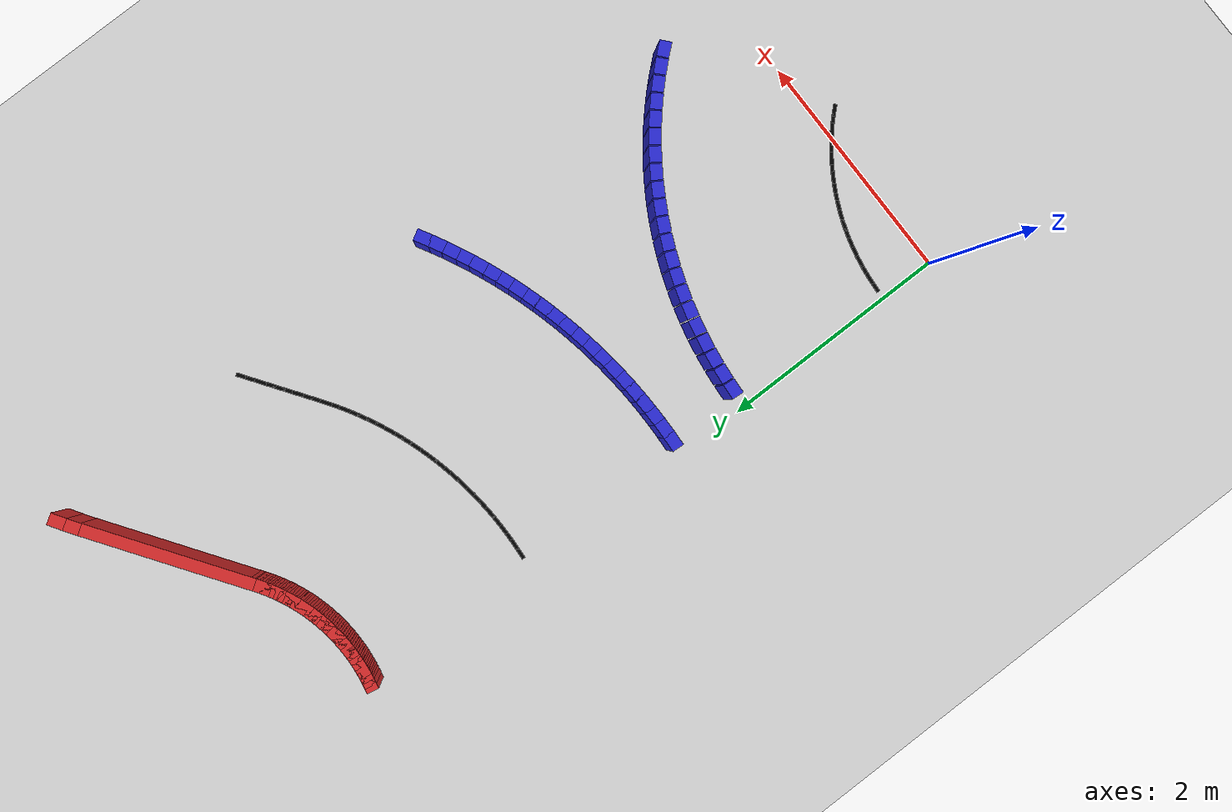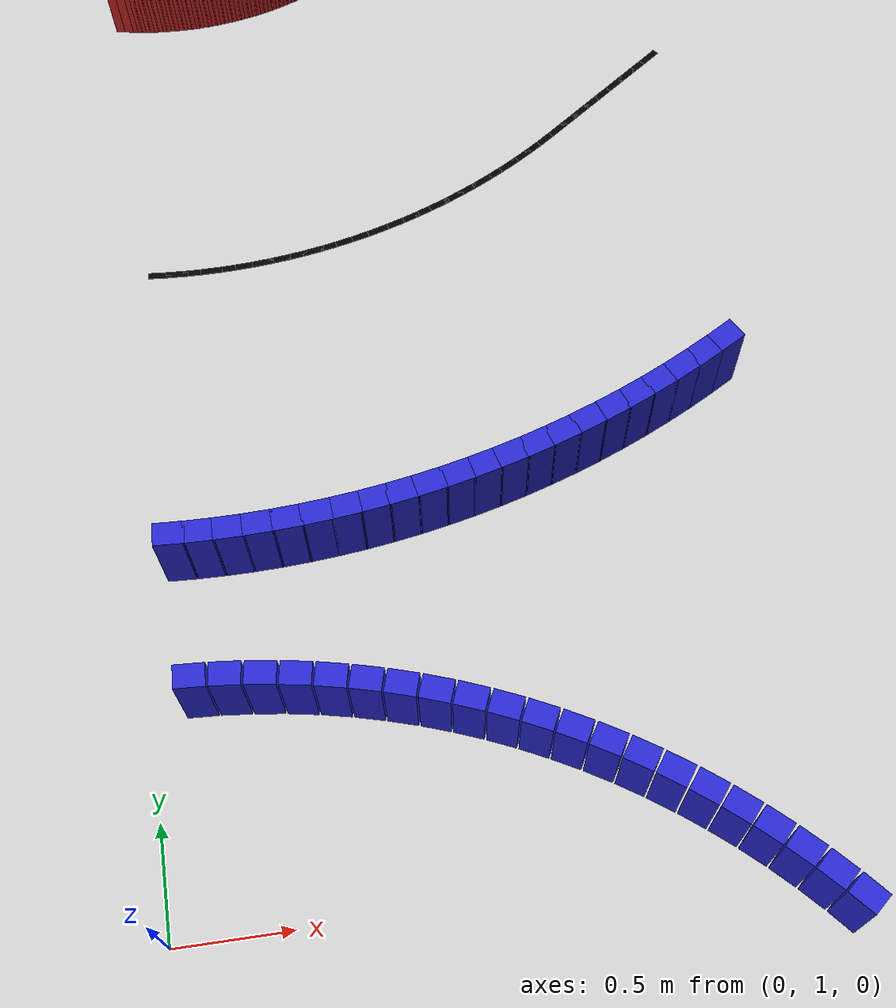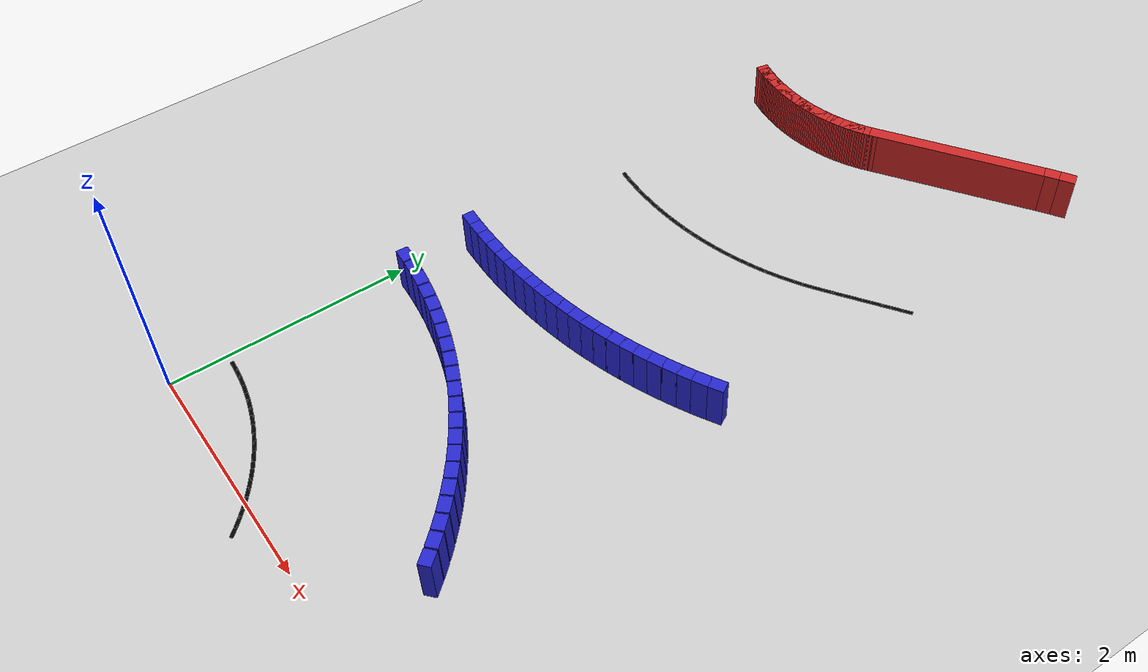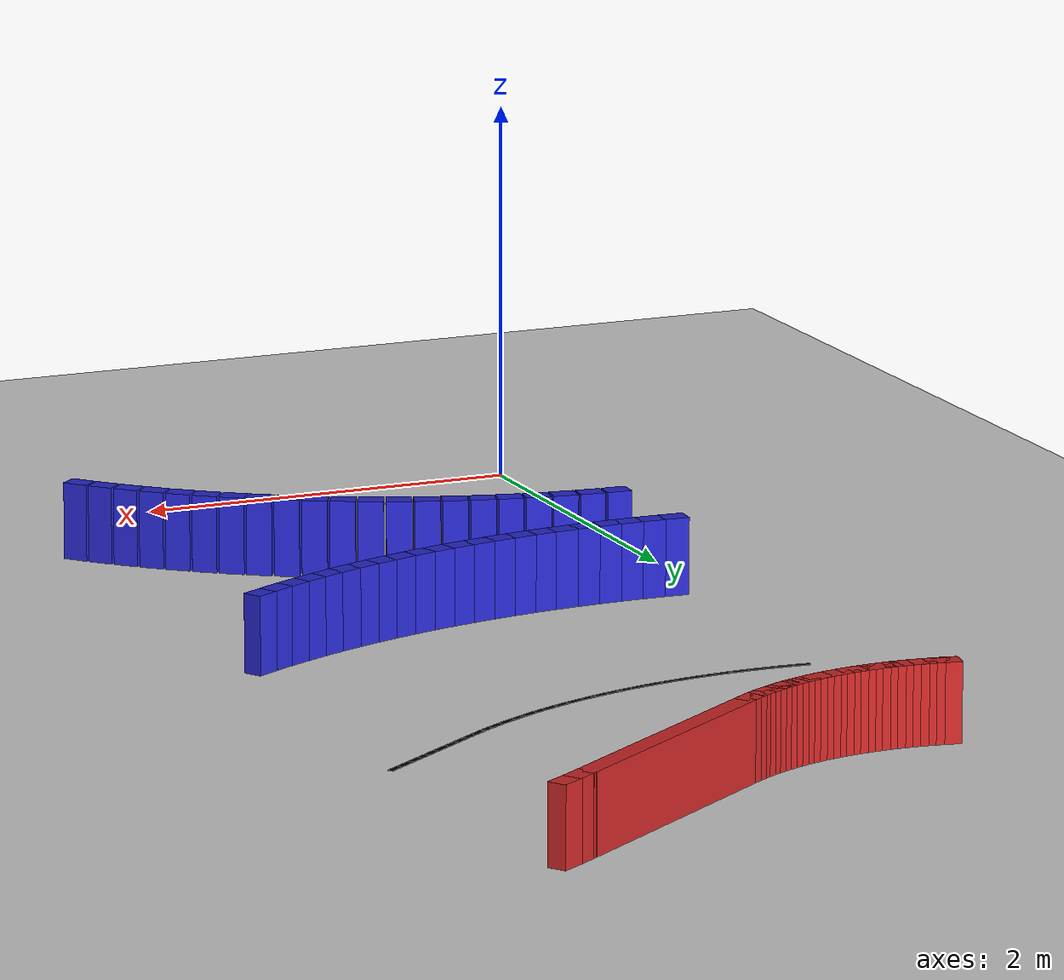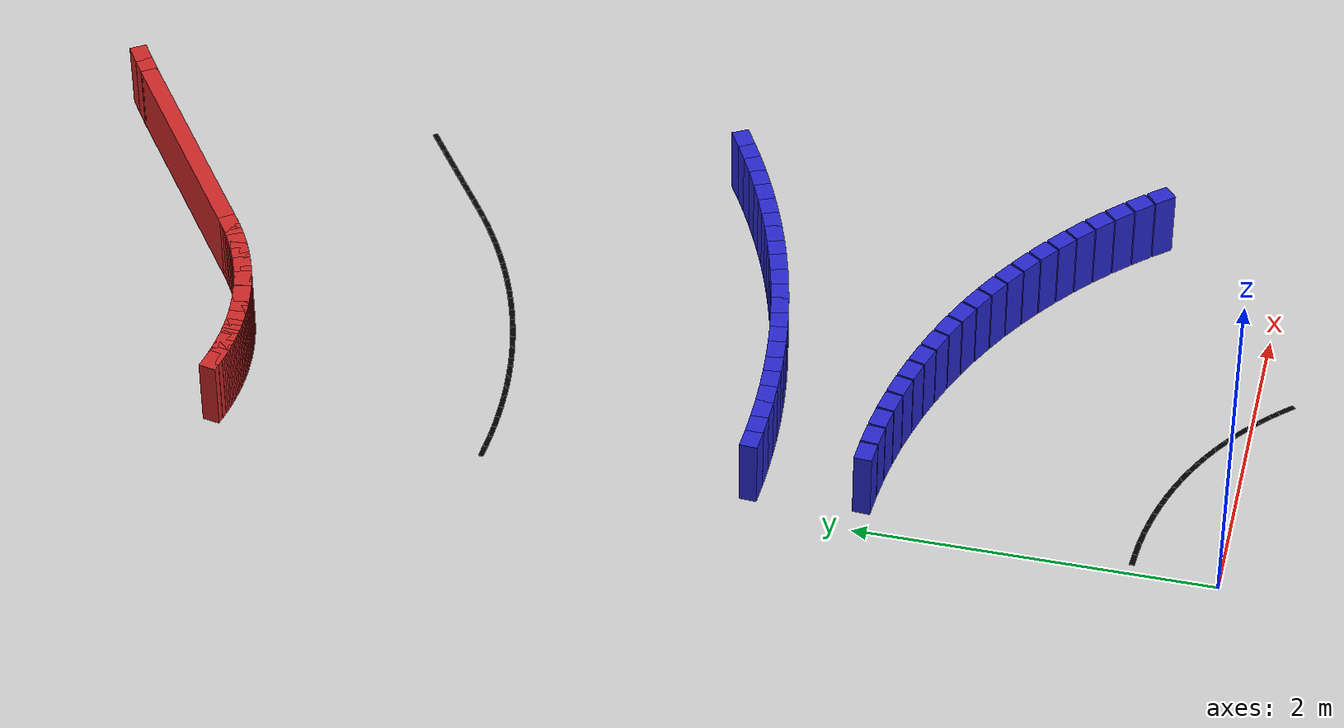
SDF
<sdf version="1.6">
 <world name="new_race_track">
  <include><uri>model://ground_plane</uri></include>
  <include><uri>model://sun</uri></include>
  <model name="race_track">
   <static>true</static>
   <link name="wall_link_121">
    <collision name="c"><geometry><box><size>0.1305 0.1 0.4</size></box></geometry></collision>
    <visual name="v">
     <geometry><box><size>0.1305 0.1 0.4</size></box></geometry>
     <material><ambient>0.15 0.15 0.8 1</ambient><diffuse>0.15 0.15 0.8 1</diffuse></material>
    </visual>
    <pose>0.2113 1.9732 0.200 0 0 -0.0604</pose>
   </link>
   <link name="wall_link_122">
    <collision name="c"><geometry><box><size>0.1305 0.1 0.4</size></box></geometry></collision>
    <visual name="v">
     <geometry><box><size>0.1305 0.1 0.4</size></box></geometry>
     <material><ambient>0.15 0.15 0.8 1</ambient><diffuse>0.15 0.15 0.8 1</diffuse></material>
    </visual>
    <pose>0.3518 1.9619 0.200 0 0 -0.1007</pose>
   </link>
   <link name="wall_link_123">
    <collision name="c"><geometry><box><size>0.1305 0.1 0.4</size></box></geometry></collision>
    <visual name="v">
     <geometry><box><size>0.1305 0.1 0.4</size></box></geometry>
     <material><ambient>0.15 0.15 0.8 1</ambient><diffuse>0.15 0.15 0.8 1</diffuse></material>
    </visual>
    <pose>0.4917 1.9449 0.200 0 0 -0.1410</pose>
   </link>
   <link name="wall_link_124">
    <collision name="c"><geometry><box><size>0.1305 0.1 0.4</size></box></geometry></collision>
    <visual name="v">
     <geometry><box><size>0.1305 0.1 0.4</size></box></geometry>
     <material><ambient>0.15 0.15 0.8 1</ambient><diffuse>0.15 0.15 0.8 1</diffuse></material>
    </visual>
    <pose>0.6308 1.9223 0.200 0 0 -0.1812</pose>
   </link>
   <link name="wall_link_125">
    <collision name="c"><geometry><box><size>0.1305 0.1 0.4</size></box></geometry></collision>
    <visual name="v">
     <geometry><box><size>0.1305 0.1 0.4</size></box></geometry>
     <material><ambient>0.15 0.15 0.8 1</ambient><diffuse>0.15 0.15 0.8 1</diffuse></material>
    </visual>
    <pose>0.7689 1.8941 0.200 0 0 -0.2215</pose>
   </link>
   <link name="wall_link_126">
    <collision name="c"><geometry><box><size>0.1305 0.1 0.4</size></box></geometry></collision>
    <visual name="v">
     <geometry><box><size>0.1305 0.1 0.4</size></box></geometry>
     <material><ambient>0.15 0.15 0.8 1</ambient><diffuse>0.15 0.15 0.8 1</diffuse></material>
    </visual>
    <pose>0.9058 1.8603 0.200 0 0 -0.2618</pose>
   </link>
   <link name="wall_link_127">
    <collision name="c"><geometry><box><size>0.1305 0.1 0.4</size></box></geometry></collision>
    <visual name="v">
     <geometry><box><size>0.1305 0.1 0.4</size></box></geometry>
     <material><ambient>0.15 0.15 0.8 1</ambient><diffuse>0.15 0.15 0.8 1</diffuse></material>
    </visual>
    <pose>1.0411 1.8211 0.200 0 0 -0.3021</pose>
   </link>
   <link name="wall_link_128">
    <collision name="c"><geometry><box><size>0.1305 0.1 0.4</size></box></geometry></collision>
    <visual name="v">
     <geometry><box><size>0.1305 0.1 0.4</size></box></geometry>
     <material><ambient>0.15 0.15 0.8 1</ambient><diffuse>0.15 0.15 0.8 1</diffuse></material>
    </visual>
    <pose>1.1748 1.7765 0.200 0 0 -0.3424</pose>
   </link>
   <link name="wall_link_129">
    <collision name="c"><geometry><box><size>0.1305 0.1 0.4</size></box></geometry></collision>
    <visual name="v">
     <geometry><box><size>0.1305 0.1 0.4</size></box></geometry>
     <material><ambient>0.15 0.15 0.8 1</ambient><diffuse>0.15 0.15 0.8 1</diffuse></material>
    </visual>
    <pose>1.3066 1.7265 0.200 0 0 -0.3826</pose>
   </link>
   <link name="wall_link_130">
    <collision name="c"><geometry><box><size>0.1305 0.1 0.4</size></box></geometry></collision>
    <visual name="v">
     <geometry><box><size>0.1305 0.1 0.4</size></box></geometry>
     <material><ambient>0.15 0.15 0.8 1</ambient><diffuse>0.15 0.15 0.8 1</diffuse></material>
    </visual>
    <pose>1.4363 1.6713 0.200 0 0 -0.4229</pose>
   </link>
   <link name="wall_link_131">
    <collision name="c"><geometry><box><size>0.1305 0.1 0.4</size></box></geometry></collision>
    <visual name="v">
     <geometry><box><size>0.1305 0.1 0.4</size></box></geometry>
     <material><ambient>0.15 0.15 0.8 1</ambient><diffuse>0.15 0.15 0.8 1</diffuse></material>
    </visual>
    <pose>1.5636 1.6109 0.200 0 0 -0.4632</pose>
   </link>
   <link name="wall_link_132">
    <collision name="c"><geometry><box><size>0.1305 0.1 0.4</size></box></geometry></collision>
    <visual name="v">
     <geometry><box><size>0.1305 0.1 0.4</size></box></geometry>
     <material><ambient>0.15 0.15 0.8 1</ambient><diffuse>0.15 0.15 0.8 1</diffuse></material>
    </visual>
    <pose>1.6884 1.5454 0.200 0 0 -0.5035</pose>
   </link>
   <link name="wall_link_133">
    <collision name="c"><geometry><box><size>0.1305 0.1 0.4</size></box></geometry></collision>
    <visual name="v">
     <geometry><box><size>0.1305 0.1 0.4</size></box></geometry>
     <material><ambient>0.15 0.15 0.8 1</ambient><diffuse>0.15 0.15 0.8 1</diffuse></material>
    </visual>
    <pose>1.8105 1.4749 0.200 0 0 -0.5437</pose>
   </link>
   <link name="wall_link_134">
    <collision name="c"><geometry><box><size>0.1305 0.1 0.4</size></box></geometry></collision>
    <visual name="v">
     <geometry><box><size>0.1305 0.1 0.4</size></box></geometry>
     <material><ambient>0.15 0.15 0.8 1</ambient><diffuse>0.15 0.15 0.8 1</diffuse></material>
    </visual>
    <pose>1.9296 1.3996 0.200 0 0 -0.5840</pose>
   </link>
   <link name="wall_link_135">
    <collision name="c"><geometry><box><size>0.1305 0.1 0.4</size></box></geometry></collision>
    <visual name="v">
     <geometry><box><size>0.1305 0.1 0.4</size></box></geometry>
     <material><ambient>0.15 0.15 0.8 1</ambient><diffuse>0.15 0.15 0.8 1</diffuse></material>
    </visual>
    <pose>2.0456 1.3195 0.200 0 0 -0.6243</pose>
   </link>
   <link name="wall_link_136">
    <collision name="c"><geometry><box><size>0.1305 0.1 0.4</size></box></geometry></collision>
    <visual name="v">
     <geometry><box><size>0.1305 0.1 0.4</size></box></geometry>
     <material><ambient>0.15 0.15 0.8 1</ambient><diffuse>0.15 0.15 0.8 1</diffuse></material>
    </visual>
    <pose>2.1583 1.2348 0.200 0 0 -0.6646</pose>
   </link>
   <link name="wall_link_137">
    <collision name="c"><geometry><box><size>0.1305 0.1 0.4</size></box></geometry></collision>
    <visual name="v">
     <geometry><box><size>0.1305 0.1 0.4</size></box></geometry>
     <material><ambient>0.15 0.15 0.8 1</ambient><diffuse>0.15 0.15 0.8 1</diffuse></material>
    </visual>
    <pose>2.2674 1.1457 0.200 0 0 -0.7048</pose>
   </link>
   <link name="wall_link_138">
    <collision name="c"><geometry><box><size>0.1305 0.1 0.4</size></box></geometry></collision>
    <visual name="v">
     <geometry><box><size>0.1305 0.1 0.4</size></box></geometry>
     <material><ambient>0.15 0.15 0.8 1</ambient><diffuse>0.15 0.15 0.8 1</diffuse></material>
    </visual>
    <pose>2.3729 1.0522 0.200 0 0 -0.7451</pose>
   </link>
   <link name="wall_link_139">
    <collision name="c"><geometry><box><size>0.1305 0.1 0.4</size></box></geometry></collision>
    <visual name="v">
     <geometry><box><size>0.1305 0.1 0.4</size></box></geometry>
     <material><ambient>0.15 0.15 0.8 1</ambient><diffuse>0.15 0.15 0.8 1</diffuse></material>
    </visual>
    <pose>2.4746 0.9546 0.200 0 0 -0.7854</pose>
   </link>
   <link name="wall_link_140">
    <collision name="c"><geometry><box><size>0.1305 0.1 0.4</size></box></geometry></collision>
    <visual name="v">
     <geometry><box><size>0.1305 0.1 0.4</size></box></geometry>
     <material><ambient>0.15 0.15 0.8 1</ambient><diffuse>0.15 0.15 0.8 1</diffuse></material>
    </visual>
    <pose>2.5722 0.8529 0.200 0 0 -0.8257</pose>
   </link>
   <link name="wall_link_141">
    <collision name="c"><geometry><box><size>0.1305 0.1 0.4</size></box></geometry></collision>
    <visual name="v">
     <geometry><box><size>0.1305 0.1 0.4</size></box></geometry>
     <material><ambient>0.15 0.15 0.8 1</ambient><diffuse>0.15 0.15 0.8 1</diffuse></material>
    </visual>
    <pose>2.6657 0.7474 0.200 0 0 -0.8660</pose>
   </link>
   <link name="wall_link_306">
    <collision name="c"><geometry><box><size>0.1314 0.1 0.4</size></box></geometry></collision>
    <visual name="v">
     <geometry><box><size>0.1314 0.1 0.4</size></box></geometry>
     <material><ambient>0.15 0.15 0.8 1</ambient><diffuse>0.15 0.15 0.8 1</diffuse></material>
    </visual>
    <pose>2.6385 3.1748 0.200 0 0 -2.6258</pose>
   </link>
   <link name="wall_link_307">
    <collision name="c"><geometry><box><size>0.1314 0.1 0.4</size></box></geometry></collision>
    <visual name="v">
     <geometry><box><size>0.1314 0.1 0.4</size></box></geometry>
     <material><ambient>0.15 0.15 0.8 1</ambient><diffuse>0.15 0.15 0.8 1</diffuse></material>
    </visual>
    <pose>2.5315 3.1159 0.200 0 0 -2.6529</pose>
   </link>
   <link name="wall_link_308">
    <collision name="c"><geometry><box><size>0.1314 0.1 0.4</size></box></geometry></collision>
    <visual name="v">
     <geometry><box><size>0.1314 0.1 0.4</size></box></geometry>
     <material><ambient>0.15 0.15 0.8 1</ambient><diffuse>0.15 0.15 0.8 1</diffuse></material>
    </visual>
    <pose>2.4228 3.0601 0.200 0 0 -2.6801</pose>
   </link>
   <link name="wall_link_309">
    <collision name="c"><geometry><box><size>0.1314 0.1 0.4</size></box></geometry></collision>
    <visual name="v">
     <geometry><box><size>0.1314 0.1 0.4</size></box></geometry>
     <material><ambient>0.15 0.15 0.8 1</ambient><diffuse>0.15 0.15 0.8 1</diffuse></material>
    </visual>
    <pose>2.3127 3.0071 0.200 0 0 -2.7072</pose>
   </link>
   <link name="wall_link_310">
    <collision name="c"><geometry><box><size>0.1314 0.1 0.4</size></box></geometry></collision>
    <visual name="v">
     <geometry><box><size>0.1314 0.1 0.4</size></box></geometry>
     <material><ambient>0.15 0.15 0.8 1</ambient><diffuse>0.15 0.15 0.8 1</diffuse></material>
    </visual>
    <pose>2.2012 2.9572 0.200 0 0 -2.7343</pose>
   </link>
   <link name="wall_link_311">
    <collision name="c"><geometry><box><size>0.1314 0.1 0.4</size></box></geometry></collision>
    <visual name="v">
     <geometry><box><size>0.1314 0.1 0.4</size></box></geometry>
     <material><ambient>0.15 0.15 0.8 1</ambient><diffuse>0.15 0.15 0.8 1</diffuse></material>
    </visual>
    <pose>2.0884 2.9104 0.200 0 0 -2.7615</pose>
   </link>
   <link name="wall_link_312">
    <collision name="c"><geometry><box><size>0.1314 0.1 0.4</size></box></geometry></collision>
    <visual name="v">
     <geometry><box><size>0.1314 0.1 0.4</size></box></geometry>
     <material><ambient>0.15 0.15 0.8 1</ambient><diffuse>0.15 0.15 0.8 1</diffuse></material>
    </visual>
    <pose>1.9743 2.8666 0.200 0 0 -2.7886</pose>
   </link>
   <link name="wall_link_313">
    <collision name="c"><geometry><box><size>0.1314 0.1 0.4</size></box></geometry></collision>
    <visual name="v">
     <geometry><box><size>0.1314 0.1 0.4</size></box></geometry>
     <material><ambient>0.15 0.15 0.8 1</ambient><diffuse>0.15 0.15 0.8 1</diffuse></material>
    </visual>
    <pose>1.8592 2.8259 0.200 0 0 -2.8158</pose>
   </link>
   <link name="wall_link_314">
    <collision name="c"><geometry><box><size>0.1314 0.1 0.4</size></box></geometry></collision>
    <visual name="v">
     <geometry><box><size>0.1314 0.1 0.4</size></box></geometry>
     <material><ambient>0.15 0.15 0.8 1</ambient><diffuse>0.15 0.15 0.8 1</diffuse></material>
    </visual>
    <pose>1.7429 2.7884 0.200 0 0 -2.8429</pose>
   </link>
   <link name="wall_link_315">
    <collision name="c"><geometry><box><size>0.1314 0.1 0.4</size></box></geometry></collision>
    <visual name="v">
     <geometry><box><size>0.1314 0.1 0.4</size></box></geometry>
     <material><ambient>0.15 0.15 0.8 1</ambient><diffuse>0.15 0.15 0.8 1</diffuse></material>
    </visual>
    <pose>1.6257 2.7541 0.200 0 0 -2.8701</pose>
   </link>
   <link name="wall_link_316">
    <collision name="c"><geometry><box><size>0.1314 0.1 0.4</size></box></geometry></collision>
    <visual name="v">
     <geometry><box><size>0.1314 0.1 0.4</size></box></geometry>
     <material><ambient>0.15 0.15 0.8 1</ambient><diffuse>0.15 0.15 0.8 1</diffuse></material>
    </visual>
    <pose>1.5075 2.7229 0.200 0 0 -2.8972</pose>
   </link>
   <link name="wall_link_317">
    <collision name="c"><geometry><box><size>0.1314 0.1 0.4</size></box></geometry></collision>
    <visual name="v">
     <geometry><box><size>0.1314 0.1 0.4</size></box></geometry>
     <material><ambient>0.15 0.15 0.8 1</ambient><diffuse>0.15 0.15 0.8 1</diffuse></material>
    </visual>
    <pose>1.3886 2.6950 0.200 0 0 -2.9244</pose>
   </link>
   <link name="wall_link_318">
    <collision name="c"><geometry><box><size>0.1314 0.1 0.4</size></box></geometry></collision>
    <visual name="v">
     <geometry><box><size>0.1314 0.1 0.4</size></box></geometry>
     <material><ambient>0.15 0.15 0.8 1</ambient><diffuse>0.15 0.15 0.8 1</diffuse></material>
    </visual>
    <pose>1.2690 2.6703 0.200 0 0 -2.9515</pose>
   </link>
   <link name="wall_link_319">
    <collision name="c"><geometry><box><size>0.1314 0.1 0.4</size></box></geometry></collision>
    <visual name="v">
     <geometry><box><size>0.1314 0.1 0.4</size></box></geometry>
     <material><ambient>0.15 0.15 0.8 1</ambient><diffuse>0.15 0.15 0.8 1</diffuse></material>
    </visual>
    <pose>1.1487 2.6488 0.200 0 0 -2.9787</pose>
   </link>
   <link name="wall_link_320">
    <collision name="c"><geometry><box><size>0.1314 0.1 0.4</size></box></geometry></collision>
    <visual name="v">
     <geometry><box><size>0.1314 0.1 0.4</size></box></geometry>
     <material><ambient>0.15 0.15 0.8 1</ambient><diffuse>0.15 0.15 0.8 1</diffuse></material>
    </visual>
    <pose>1.0279 2.6306 0.200 0 0 -3.0058</pose>
   </link>
   <link name="wall_link_321">
    <collision name="c"><geometry><box><size>0.1314 0.1 0.4</size></box></geometry></collision>
    <visual name="v">
     <geometry><box><size>0.1314 0.1 0.4</size></box></geometry>
     <material><ambient>0.15 0.15 0.8 1</ambient><diffuse>0.15 0.15 0.8 1</diffuse></material>
    </visual>
    <pose>0.9067 2.6157 0.200 0 0 -3.0330</pose>
   </link>
   <link name="wall_link_322">
    <collision name="c"><geometry><box><size>0.1314 0.1 0.4</size></box></geometry></collision>
    <visual name="v">
     <geometry><box><size>0.1314 0.1 0.4</size></box></geometry>
     <material><ambient>0.15 0.15 0.8 1</ambient><diffuse>0.15 0.15 0.8 1</diffuse></material>
    </visual>
    <pose>0.7851 2.6042 0.200 0 0 -3.0601</pose>
   </link>
   <link name="wall_link_323">
    <collision name="c"><geometry><box><size>0.1314 0.1 0.4</size></box></geometry></collision>
    <visual name="v">
     <geometry><box><size>0.1314 0.1 0.4</size></box></geometry>
     <material><ambient>0.15 0.15 0.8 1</ambient><diffuse>0.15 0.15 0.8 1</diffuse></material>
    </visual>
    <pose>0.6632 2.5959 0.200 0 0 -3.0873</pose>
   </link>
   <link name="wall_link_324">
    <collision name="c"><geometry><box><size>0.1314 0.1 0.4</size></box></geometry></collision>
    <visual name="v">
     <geometry><box><size>0.1314 0.1 0.4</size></box></geometry>
     <material><ambient>0.15 0.15 0.8 1</ambient><diffuse>0.15 0.15 0.8 1</diffuse></material>
    </visual>
    <pose>0.5411 2.5909 0.200 0 0 -3.1144</pose>
   </link>
   <link name="wall_link_325">
    <collision name="c"><geometry><box><size>0.1314 0.1 0.4</size></box></geometry></collision>
    <visual name="v">
     <geometry><box><size>0.1314 0.1 0.4</size></box></geometry>
     <material><ambient>0.15 0.15 0.8 1</ambient><diffuse>0.15 0.15 0.8 1</diffuse></material>
    </visual>
    <pose>0.4190 2.5892 0.200 0 0 3.1416</pose>
   </link>
   <link name="wall_link_326">
    <collision name="c"><geometry><box><size>0.1314 0.1 0.4</size></box></geometry></collision>
    <visual name="v">
     <geometry><box><size>0.1314 0.1 0.4</size></box></geometry>
     <material><ambient>0.15 0.15 0.8 1</ambient><diffuse>0.15 0.15 0.8 1</diffuse></material>
    </visual>
    <pose>0.2968 2.5909 0.200 0 0 3.1144</pose>
   </link>
   <link name="wall_link_327">
    <collision name="c"><geometry><box><size>0.1314 0.1 0.4</size></box></geometry></collision>
    <visual name="v">
     <geometry><box><size>0.1314 0.1 0.4</size></box></geometry>
     <material><ambient>0.15 0.15 0.8 1</ambient><diffuse>0.15 0.15 0.8 1</diffuse></material>
    </visual>
    <pose>0.1748 2.5959 0.200 0 0 3.0873</pose>
   </link>
   <link name="wall_link_712">
    <collision name="c"><geometry><box><size>0.1333 0.1 0.4</size></box></geometry></collision>
    <visual name="v">
     <geometry><box><size>0.1333 0.1 0.4</size></box></geometry>
     <material><ambient>0.8 0.15 0.15 1</ambient><diffuse>0.8 0.15 0.15 1</diffuse></material>
    </visual>
    <pose>2.6148 6.7902 0.200 0 0 -2.5724</pose>
   </link>
   <link name="wall_link_713">
    <collision name="c"><geometry><box><size>0.1333 0.1 0.4</size></box></geometry></collision>
    <visual name="v">
     <geometry><box><size>0.1333 0.1 0.4</size></box></geometry>
     <material><ambient>0.8 0.15 0.15 1</ambient><diffuse>0.8 0.15 0.15 1</diffuse></material>
    </visual>
    <pose>2.5105 6.7214 0.200 0 0 -2.5446</pose>
   </link>
   <link name="merged_wall_link_714">
    <pose>1.8691 6.2732 0.2000 0.0000 0.0000 -2.5307</pose>
    <collision name="c"><geometry><box><size>1.4899 0.1000 0.4000</size></box></geometry></collision>
    <visual name="v">
     <geometry><box><size>1.4899 0.1000 0.4000</size></box></geometry>
     <material><ambient>0.8 0.15 0.15 1</ambient><diffuse>0.8 0.15 0.15 1</diffuse></material>
    </visual>
   </link>
   <link name="wall_link_715">
    <collision name="c"><geometry><box><size>0.1314 0.1 0.4</size></box></geometry></collision>
    <visual name="v">
     <geometry><box><size>0.1314 0.1 0.4</size></box></geometry>
     <material><ambient>0.8 0.15 0.15 1</ambient><diffuse>0.8 0.15 0.15 1</diffuse></material>
    </visual>
    <pose>1.2624 5.8489 0.200 0 0 -2.5443</pose>
   </link>
   <link name="wall_link_716">
    <collision name="c"><geometry><box><size>0.1314 0.1 0.4</size></box></geometry></collision>
    <visual name="v">
     <geometry><box><size>0.1314 0.1 0.4</size></box></geometry>
     <material><ambient>0.8 0.15 0.15 1</ambient><diffuse>0.8 0.15 0.15 1</diffuse></material>
    </visual>
    <pose>1.2284 5.8265 0.200 0 0 -2.5715</pose>
   </link>
   <link name="wall_link_717">
    <collision name="c"><geometry><box><size>0.1314 0.1 0.4</size></box></geometry></collision>
    <visual name="v">
     <geometry><box><size>0.1314 0.1 0.4</size></box></geometry>
     <material><ambient>0.8 0.15 0.15 1</ambient><diffuse>0.8 0.15 0.15 1</diffuse></material>
    </visual>
    <pose>1.1939 5.8049 0.200 0 0 -2.5986</pose>
   </link>
   <link name="wall_link_718">
    <collision name="c"><geometry><box><size>0.1314 0.1 0.4</size></box></geometry></collision>
    <visual name="v">
     <geometry><box><size>0.1314 0.1 0.4</size></box></geometry>
     <material><ambient>0.8 0.15 0.15 1</ambient><diffuse>0.8 0.15 0.15 1</diffuse></material>
    </visual>
    <pose>1.1587 5.7844 0.200 0 0 -2.6258</pose>
   </link>
   <link name="wall_link_719">
    <collision name="c"><geometry><box><size>0.1314 0.1 0.4</size></box></geometry></collision>
    <visual name="v">
     <geometry><box><size>0.1314 0.1 0.4</size></box></geometry>
     <material><ambient>0.8 0.15 0.15 1</ambient><diffuse>0.8 0.15 0.15 1</diffuse></material>
    </visual>
    <pose>1.1230 5.7648 0.200 0 0 -2.6529</pose>
   </link>
   <link name="wall_link_720">
    <collision name="c"><geometry><box><size>0.1314 0.1 0.4</size></box></geometry></collision>
    <visual name="v">
     <geometry><box><size>0.1314 0.1 0.4</size></box></geometry>
     <material><ambient>0.8 0.15 0.15 1</ambient><diffuse>0.8 0.15 0.15 1</diffuse></material>
    </visual>
    <pose>1.0868 5.7462 0.200 0 0 -2.6801</pose>
   </link>
   <link name="wall_link_721">
    <collision name="c"><geometry><box><size>0.1314 0.1 0.4</size></box></geometry></collision>
    <visual name="v">
     <geometry><box><size>0.1314 0.1 0.4</size></box></geometry>
     <material><ambient>0.8 0.15 0.15 1</ambient><diffuse>0.8 0.15 0.15 1</diffuse></material>
    </visual>
    <pose>1.0501 5.7285 0.200 0 0 -2.7072</pose>
   </link>
   <link name="wall_link_722">
    <collision name="c"><geometry><box><size>0.1314 0.1 0.4</size></box></geometry></collision>
    <visual name="v">
     <geometry><box><size>0.1314 0.1 0.4</size></box></geometry>
     <material><ambient>0.8 0.15 0.15 1</ambient><diffuse>0.8 0.15 0.15 1</diffuse></material>
    </visual>
    <pose>1.0130 5.7119 0.200 0 0 -2.7343</pose>
   </link>
   <link name="wall_link_723">
    <collision name="c"><geometry><box><size>0.1314 0.1 0.4</size></box></geometry></collision>
    <visual name="v">
     <geometry><box><size>0.1314 0.1 0.4</size></box></geometry>
     <material><ambient>0.8 0.15 0.15 1</ambient><diffuse>0.8 0.15 0.15 1</diffuse></material>
    </visual>
    <pose>0.9754 5.6963 0.200 0 0 -2.7615</pose>
   </link>
   <link name="wall_link_724">
    <collision name="c"><geometry><box><size>0.1314 0.1 0.4</size></box></geometry></collision>
    <visual name="v">
     <geometry><box><size>0.1314 0.1 0.4</size></box></geometry>
     <material><ambient>0.8 0.15 0.15 1</ambient><diffuse>0.8 0.15 0.15 1</diffuse></material>
    </visual>
    <pose>0.9374 5.6817 0.200 0 0 -2.7886</pose>
   </link>
   <link name="wall_link_725">
    <collision name="c"><geometry><box><size>0.1314 0.1 0.4</size></box></geometry></collision>
    <visual name="v">
     <geometry><box><size>0.1314 0.1 0.4</size></box></geometry>
     <material><ambient>0.8 0.15 0.15 1</ambient><diffuse>0.8 0.15 0.15 1</diffuse></material>
    </visual>
    <pose>0.8990 5.6681 0.200 0 0 -2.8158</pose>
   </link>
   <link name="wall_link_726">
    <collision name="c"><geometry><box><size>0.1314 0.1 0.4</size></box></geometry></collision>
    <visual name="v">
     <geometry><box><size>0.1314 0.1 0.4</size></box></geometry>
     <material><ambient>0.8 0.15 0.15 1</ambient><diffuse>0.8 0.15 0.15 1</diffuse></material>
    </visual>
    <pose>0.8602 5.6556 0.200 0 0 -2.8429</pose>
   </link>
   <link name="wall_link_727">
    <collision name="c"><geometry><box><size>0.1314 0.1 0.4</size></box></geometry></collision>
    <visual name="v">
     <geometry><box><size>0.1314 0.1 0.4</size></box></geometry>
     <material><ambient>0.8 0.15 0.15 1</ambient><diffuse>0.8 0.15 0.15 1</diffuse></material>
    </visual>
    <pose>0.8211 5.6442 0.200 0 0 -2.8701</pose>
   </link>
   <link name="wall_link_728">
    <collision name="c"><geometry><box><size>0.1314 0.1 0.4</size></box></geometry></collision>
    <visual name="v">
     <geometry><box><size>0.1314 0.1 0.4</size></box></geometry>
     <material><ambient>0.8 0.15 0.15 1</ambient><diffuse>0.8 0.15 0.15 1</diffuse></material>
    </visual>
    <pose>0.7818 5.6338 0.200 0 0 -2.8972</pose>
   </link>
   <link name="wall_link_729">
    <collision name="c"><geometry><box><size>0.1314 0.1 0.4</size></box></geometry></collision>
    <visual name="v">
     <geometry><box><size>0.1314 0.1 0.4</size></box></geometry>
     <material><ambient>0.8 0.15 0.15 1</ambient><diffuse>0.8 0.15 0.15 1</diffuse></material>
    </visual>
    <pose>0.7421 5.6245 0.200 0 0 -2.9244</pose>
   </link>
   <link name="wall_link_730">
    <collision name="c"><geometry><box><size>0.1314 0.1 0.4</size></box></geometry></collision>
    <visual name="v">
     <geometry><box><size>0.1314 0.1 0.4</size></box></geometry>
     <material><ambient>0.8 0.15 0.15 1</ambient><diffuse>0.8 0.15 0.15 1</diffuse></material>
    </visual>
    <pose>0.7023 5.6162 0.200 0 0 -2.9515</pose>
   </link>
   <link name="wall_link_731">
    <collision name="c"><geometry><box><size>0.1314 0.1 0.4</size></box></geometry></collision>
    <visual name="v">
     <geometry><box><size>0.1314 0.1 0.4</size></box></geometry>
     <material><ambient>0.8 0.15 0.15 1</ambient><diffuse>0.8 0.15 0.15 1</diffuse></material>
    </visual>
    <pose>0.6622 5.6091 0.200 0 0 -2.9787</pose>
   </link>
   <link name="wall_link_732">
    <collision name="c"><geometry><box><size>0.1314 0.1 0.4</size></box></geometry></collision>
    <visual name="v">
     <geometry><box><size>0.1314 0.1 0.4</size></box></geometry>
     <material><ambient>0.8 0.15 0.15 1</ambient><diffuse>0.8 0.15 0.15 1</diffuse></material>
    </visual>
    <pose>0.6219 5.6030 0.200 0 0 -3.0058</pose>
   </link>
   <link name="wall_link_733">
    <collision name="c"><geometry><box><size>0.1314 0.1 0.4</size></box></geometry></collision>
    <visual name="v">
     <geometry><box><size>0.1314 0.1 0.4</size></box></geometry>
     <material><ambient>0.8 0.15 0.15 1</ambient><diffuse>0.8 0.15 0.15 1</diffuse></material>
    </visual>
    <pose>0.5815 5.5981 0.200 0 0 -3.0330</pose>
   </link>
   <link name="wall_link_734">
    <collision name="c"><geometry><box><size>0.1314 0.1 0.4</size></box></geometry></collision>
    <visual name="v">
     <geometry><box><size>0.1314 0.1 0.4</size></box></geometry>
     <material><ambient>0.8 0.15 0.15 1</ambient><diffuse>0.8 0.15 0.15 1</diffuse></material>
    </visual>
    <pose>0.5410 5.5942 0.200 0 0 -3.0601</pose>
   </link>
   <link name="wall_link_735">
    <collision name="c"><geometry><box><size>0.1314 0.1 0.4</size></box></geometry></collision>
    <visual name="v">
     <geometry><box><size>0.1314 0.1 0.4</size></box></geometry>
     <material><ambient>0.8 0.15 0.15 1</ambient><diffuse>0.8 0.15 0.15 1</diffuse></material>
    </visual>
    <pose>0.5004 5.5914 0.200 0 0 -3.0873</pose>
   </link>
   <link name="wall_link_736">
    <collision name="c"><geometry><box><size>0.1314 0.1 0.4</size></box></geometry></collision>
    <visual name="v">
     <geometry><box><size>0.1314 0.1 0.4</size></box></geometry>
     <material><ambient>0.8 0.15 0.15 1</ambient><diffuse>0.8 0.15 0.15 1</diffuse></material>
    </visual>
    <pose>0.4597 5.5898 0.200 0 0 -3.1144</pose>
   </link>
   <link name="wall_link_737">
    <collision name="c"><geometry><box><size>0.1314 0.1 0.4</size></box></geometry></collision>
    <visual name="v">
     <geometry><box><size>0.1314 0.1 0.4</size></box></geometry>
     <material><ambient>0.8 0.15 0.15 1</ambient><diffuse>0.8 0.15 0.15 1</diffuse></material>
    </visual>
    <pose>0.4190 5.5892 0.200 0 0 3.1416</pose>
   </link>
   <link name="wall_link_738">
    <collision name="c"><geometry><box><size>0.1314 0.1 0.4</size></box></geometry></collision>
    <visual name="v">
     <geometry><box><size>0.1314 0.1 0.4</size></box></geometry>
     <material><ambient>0.8 0.15 0.15 1</ambient><diffuse>0.8 0.15 0.15 1</diffuse></material>
    </visual>
    <pose>0.3783 5.5898 0.200 0 0 3.1144</pose>
   </link>
   <link name="wall_link_739">
    <collision name="c"><geometry><box><size>0.1314 0.1 0.4</size></box></geometry></collision>
    <visual name="v">
     <geometry><box><size>0.1314 0.1 0.4</size></box></geometry>
     <material><ambient>0.8 0.15 0.15 1</ambient><diffuse>0.8 0.15 0.15 1</diffuse></material>
    </visual>
    <pose>0.3376 5.5914 0.200 0 0 3.0873</pose>
   </link>
   <link name="wall_link_740">
    <collision name="c"><geometry><box><size>0.1314 0.1 0.4</size></box></geometry></collision>
    <visual name="v">
     <geometry><box><size>0.1314 0.1 0.4</size></box></geometry>
     <material><ambient>0.8 0.15 0.15 1</ambient><diffuse>0.8 0.15 0.15 1</diffuse></material>
    </visual>
    <pose>0.2969 5.5942 0.200 0 0 3.0601</pose>
   </link>
   <link name="wall_link_741">
    <collision name="c"><geometry><box><size>0.1314 0.1 0.4</size></box></geometry></collision>
    <visual name="v">
     <geometry><box><size>0.1314 0.1 0.4</size></box></geometry>
     <material><ambient>0.8 0.15 0.15 1</ambient><diffuse>0.8 0.15 0.15 1</diffuse></material>
    </visual>
    <pose>0.2564 5.5981 0.200 0 0 3.0330</pose>
   </link>
   <link name="wall_link_742">
    <collision name="c"><geometry><box><size>0.1314 0.1 0.4</size></box></geometry></collision>
    <visual name="v">
     <geometry><box><size>0.1314 0.1 0.4</size></box></geometry>
     <material><ambient>0.8 0.15 0.15 1</ambient><diffuse>0.8 0.15 0.15 1</diffuse></material>
    </visual>
    <pose>0.2160 5.6030 0.200 0 0 3.0058</pose>
   </link>
   <link name="wall_link_743">
    <collision name="c"><geometry><box><size>0.1314 0.1 0.4</size></box></geometry></collision>
    <visual name="v">
     <geometry><box><size>0.1314 0.1 0.4</size></box></geometry>
     <material><ambient>0.8 0.15 0.15 1</ambient><diffuse>0.8 0.15 0.15 1</diffuse></material>
    </visual>
    <pose>0.1757 5.6091 0.200 0 0 2.9787</pose>
   </link>
   <link name="wall_link_744">
    <collision name="c"><geometry><box><size>0.1314 0.1 0.4</size></box></geometry></collision>
    <visual name="v">
     <geometry><box><size>0.1314 0.1 0.4</size></box></geometry>
     <material><ambient>0.8 0.15 0.15 1</ambient><diffuse>0.8 0.15 0.15 1</diffuse></material>
    </visual>
    <pose>0.1357 5.6162 0.200 0 0 2.9515</pose>
   </link>
   <link name="line_link_1048">
    <visual name="v">
     <geometry><box><size>0.1005 0.03 0.002</size></box></geometry>
     <material><ambient>0 0 0 1</ambient><diffuse>0 0 0 1</diffuse></material>
    </visual>
    <pose>0.1207 0.4759 0.002 0 0 -0.0604</pose>
   </link>
   <link name="line_link_1049">
    <visual name="v">
     <geometry><box><size>0.1005 0.03 0.002</size></box></geometry>
     <material><ambient>0 0 0 1</ambient><diffuse>0 0 0 1</diffuse></material>
    </visual>
    <pose>0.2010 0.4695 0.002 0 0 -0.1007</pose>
   </link>
   <link name="line_link_1050">
    <visual name="v">
     <geometry><box><size>0.1005 0.03 0.002</size></box></geometry>
     <material><ambient>0 0 0 1</ambient><diffuse>0 0 0 1</diffuse></material>
    </visual>
    <pose>0.2809 0.4598 0.002 0 0 -0.1410</pose>
   </link>
   <link name="line_link_1051">
    <visual name="v">
     <geometry><box><size>0.1005 0.03 0.002</size></box></geometry>
     <material><ambient>0 0 0 1</ambient><diffuse>0 0 0 1</diffuse></material>
    </visual>
    <pose>0.3604 0.4468 0.002 0 0 -0.1812</pose>
   </link>
   <link name="line_link_1052">
    <visual name="v">
     <geometry><box><size>0.1005 0.03 0.002</size></box></geometry>
     <material><ambient>0 0 0 1</ambient><diffuse>0 0 0 1</diffuse></material>
    </visual>
    <pose>0.4393 0.4307 0.002 0 0 -0.2215</pose>
   </link>
   <link name="line_link_1053">
    <visual name="v">
     <geometry><box><size>0.1005 0.03 0.002</size></box></geometry>
     <material><ambient>0 0 0 1</ambient><diffuse>0 0 0 1</diffuse></material>
    </visual>
    <pose>0.5175 0.4115 0.002 0 0 -0.2618</pose>
   </link>
   <link name="line_link_1054">
    <visual name="v">
     <geometry><box><size>0.1005 0.03 0.002</size></box></geometry>
     <material><ambient>0 0 0 1</ambient><diffuse>0 0 0 1</diffuse></material>
    </visual>
    <pose>0.5949 0.3891 0.002 0 0 -0.3021</pose>
   </link>
   <link name="line_link_1055">
    <visual name="v">
     <geometry><box><size>0.1005 0.03 0.002</size></box></geometry>
     <material><ambient>0 0 0 1</ambient><diffuse>0 0 0 1</diffuse></material>
    </visual>
    <pose>0.6713 0.3636 0.002 0 0 -0.3424</pose>
   </link>
   <link name="line_link_1056">
    <visual name="v">
     <geometry><box><size>0.1005 0.03 0.002</size></box></geometry>
     <material><ambient>0 0 0 1</ambient><diffuse>0 0 0 1</diffuse></material>
    </visual>
    <pose>0.7466 0.3350 0.002 0 0 -0.3826</pose>
   </link>
   <link name="line_link_1057">
    <visual name="v">
     <geometry><box><size>0.1005 0.03 0.002</size></box></geometry>
     <material><ambient>0 0 0 1</ambient><diffuse>0 0 0 1</diffuse></material>
    </visual>
    <pose>0.8207 0.3034 0.002 0 0 -0.4229</pose>
   </link>
   <link name="line_link_1058">
    <visual name="v">
     <geometry><box><size>0.1005 0.03 0.002</size></box></geometry>
     <material><ambient>0 0 0 1</ambient><diffuse>0 0 0 1</diffuse></material>
    </visual>
    <pose>0.8934 0.2689 0.002 0 0 -0.4632</pose>
   </link>
   <link name="line_link_1059">
    <visual name="v">
     <geometry><box><size>0.1005 0.03 0.002</size></box></geometry>
     <material><ambient>0 0 0 1</ambient><diffuse>0 0 0 1</diffuse></material>
    </visual>
    <pose>0.9647 0.2315 0.002 0 0 -0.5035</pose>
   </link>
   <link name="line_link_1060">
    <visual name="v">
     <geometry><box><size>0.1005 0.03 0.002</size></box></geometry>
     <material><ambient>0 0 0 1</ambient><diffuse>0 0 0 1</diffuse></material>
    </visual>
    <pose>1.0345 0.1912 0.002 0 0 -0.5437</pose>
   </link>
   <link name="line_link_1061">
    <visual name="v">
     <geometry><box><size>0.1005 0.03 0.002</size></box></geometry>
     <material><ambient>0 0 0 1</ambient><diffuse>0 0 0 1</diffuse></material>
    </visual>
    <pose>1.1025 0.1482 0.002 0 0 -0.5840</pose>
   </link>
   <link name="line_link_1062">
    <visual name="v">
     <geometry><box><size>0.1005 0.03 0.002</size></box></geometry>
     <material><ambient>0 0 0 1</ambient><diffuse>0 0 0 1</diffuse></material>
    </visual>
    <pose>1.1688 0.1024 0.002 0 0 -0.6243</pose>
   </link>
   <link name="line_link_1063">
    <visual name="v">
     <geometry><box><size>0.1005 0.03 0.002</size></box></geometry>
     <material><ambient>0 0 0 1</ambient><diffuse>0 0 0 1</diffuse></material>
    </visual>
    <pose>1.2332 0.0540 0.002 0 0 -0.6646</pose>
   </link>
   <link name="line_link_1064">
    <visual name="v">
     <geometry><box><size>0.1005 0.03 0.002</size></box></geometry>
     <material><ambient>0 0 0 1</ambient><diffuse>0 0 0 1</diffuse></material>
    </visual>
    <pose>1.2956 0.0031 0.002 0 0 -0.7048</pose>
   </link>
   <link name="line_link_1065">
    <visual name="v">
     <geometry><box><size>0.1005 0.03 0.002</size></box></geometry>
     <material><ambient>0 0 0 1</ambient><diffuse>0 0 0 1</diffuse></material>
    </visual>
    <pose>1.3558 -0.0503 0.002 0 0 -0.7451</pose>
   </link>
   <link name="line_link_1066">
    <visual name="v">
     <geometry><box><size>0.1005 0.03 0.002</size></box></geometry>
     <material><ambient>0 0 0 1</ambient><diffuse>0 0 0 1</diffuse></material>
    </visual>
    <pose>1.4139 -0.1061 0.002 0 0 -0.7854</pose>
   </link>
   <link name="line_link_1067">
    <visual name="v">
     <geometry><box><size>0.1005 0.03 0.002</size></box></geometry>
     <material><ambient>0 0 0 1</ambient><diffuse>0 0 0 1</diffuse></material>
    </visual>
    <pose>1.4697 -0.1642 0.002 0 0 -0.8257</pose>
   </link>
   <link name="line_link_1402">
    <visual name="v">
     <geometry><box><size>0.1000 0.03 0.002</size></box></geometry>
     <material><ambient>0 0 0 1</ambient><diffuse>0 0 0 1</diffuse></material>
    </visual>
    <pose>2.6967 5.0215 0.002 0 0 -2.5307</pose>
   </link>
   <link name="line_link_1403">
    <visual name="v">
     <geometry><box><size>0.1000 0.03 0.002</size></box></geometry>
     <material><ambient>0 0 0 1</ambient><diffuse>0 0 0 1</diffuse></material>
    </visual>
    <pose>2.6312 4.9757 0.002 0 0 -2.5307</pose>
   </link>
   <link name="line_link_1404">
    <visual name="v">
     <geometry><box><size>0.1000 0.03 0.002</size></box></geometry>
     <material><ambient>0 0 0 1</ambient><diffuse>0 0 0 1</diffuse></material>
    </visual>
    <pose>2.5657 4.9298 0.002 0 0 -2.5307</pose>
   </link>
   <link name="line_link_1405">
    <visual name="v">
     <geometry><box><size>0.1000 0.03 0.002</size></box></geometry>
     <material><ambient>0 0 0 1</ambient><diffuse>0 0 0 1</diffuse></material>
    </visual>
    <pose>2.5001 4.8839 0.002 0 0 -2.5307</pose>
   </link>
   <link name="line_link_1406">
    <visual name="v">
     <geometry><box><size>0.1000 0.03 0.002</size></box></geometry>
     <material><ambient>0 0 0 1</ambient><diffuse>0 0 0 1</diffuse></material>
    </visual>
    <pose>2.4346 4.8380 0.002 0 0 -2.5307</pose>
   </link>
   <link name="line_link_1407">
    <visual name="v">
     <geometry><box><size>0.1000 0.03 0.002</size></box></geometry>
     <material><ambient>0 0 0 1</ambient><diffuse>0 0 0 1</diffuse></material>
    </visual>
    <pose>2.3691 4.7921 0.002 0 0 -2.5307</pose>
   </link>
   <link name="line_link_1408">
    <visual name="v">
     <geometry><box><size>0.1000 0.03 0.002</size></box></geometry>
     <material><ambient>0 0 0 1</ambient><diffuse>0 0 0 1</diffuse></material>
    </visual>
    <pose>2.3035 4.7462 0.002 0 0 -2.5307</pose>
   </link>
   <link name="line_link_1409">
    <visual name="v">
     <geometry><box><size>0.1000 0.03 0.002</size></box></geometry>
     <material><ambient>0 0 0 1</ambient><diffuse>0 0 0 1</diffuse></material>
    </visual>
    <pose>2.2380 4.7003 0.002 0 0 -2.5307</pose>
   </link>
   <link name="line_link_1410">
    <visual name="v">
     <geometry><box><size>0.1000 0.03 0.002</size></box></geometry>
     <material><ambient>0 0 0 1</ambient><diffuse>0 0 0 1</diffuse></material>
    </visual>
    <pose>2.1725 4.6544 0.002 0 0 -2.5307</pose>
   </link>
   <link name="line_link_1411">
    <visual name="v">
     <geometry><box><size>0.1014 0.03 0.002</size></box></geometry>
     <material><ambient>0 0 0 1</ambient><diffuse>0 0 0 1</diffuse></material>
    </visual>
    <pose>2.1060 4.6086 0.002 0 0 -2.5443</pose>
   </link>
   <link name="line_link_1412">
    <visual name="v">
     <geometry><box><size>0.1014 0.03 0.002</size></box></geometry>
     <material><ambient>0 0 0 1</ambient><diffuse>0 0 0 1</diffuse></material>
    </visual>
    <pose>2.0381 4.5637 0.002 0 0 -2.5715</pose>
   </link>
   <link name="line_link_1413">
    <visual name="v">
     <geometry><box><size>0.1014 0.03 0.002</size></box></geometry>
     <material><ambient>0 0 0 1</ambient><diffuse>0 0 0 1</diffuse></material>
    </visual>
    <pose>1.9689 4.5207 0.002 0 0 -2.5986</pose>
   </link>
   <link name="line_link_1414">
    <visual name="v">
     <geometry><box><size>0.1014 0.03 0.002</size></box></geometry>
     <material><ambient>0 0 0 1</ambient><diffuse>0 0 0 1</diffuse></material>
    </visual>
    <pose>1.8986 4.4796 0.002 0 0 -2.6258</pose>
   </link>
   <link name="line_link_1415">
    <visual name="v">
     <geometry><box><size>0.1014 0.03 0.002</size></box></geometry>
     <material><ambient>0 0 0 1</ambient><diffuse>0 0 0 1</diffuse></material>
    </visual>
    <pose>1.8272 4.4404 0.002 0 0 -2.6529</pose>
   </link>
   <link name="line_link_1416">
    <visual name="v">
     <geometry><box><size>0.1014 0.03 0.002</size></box></geometry>
     <material><ambient>0 0 0 1</ambient><diffuse>0 0 0 1</diffuse></material>
    </visual>
    <pose>1.7548 4.4031 0.002 0 0 -2.6801</pose>
   </link>
   <link name="line_link_1417">
    <visual name="v">
     <geometry><box><size>0.1014 0.03 0.002</size></box></geometry>
     <material><ambient>0 0 0 1</ambient><diffuse>0 0 0 1</diffuse></material>
    </visual>
    <pose>1.6814 4.3678 0.002 0 0 -2.7072</pose>
   </link>
   <link name="line_link_1418">
    <visual name="v">
     <geometry><box><size>0.1014 0.03 0.002</size></box></geometry>
     <material><ambient>0 0 0 1</ambient><diffuse>0 0 0 1</diffuse></material>
    </visual>
    <pose>1.6071 4.3346 0.002 0 0 -2.7343</pose>
   </link>
   <link name="line_link_1419">
    <visual name="v">
     <geometry><box><size>0.1014 0.03 0.002</size></box></geometry>
     <material><ambient>0 0 0 1</ambient><diffuse>0 0 0 1</diffuse></material>
    </visual>
    <pose>1.5319 4.3033 0.002 0 0 -2.7615</pose>
   </link>
   <link name="line_link_1420">
    <visual name="v">
     <geometry><box><size>0.1014 0.03 0.002</size></box></geometry>
     <material><ambient>0 0 0 1</ambient><diffuse>0 0 0 1</diffuse></material>
    </visual>
    <pose>1.4559 4.2741 0.002 0 0 -2.7886</pose>
   </link>
   <link name="line_link_1421">
    <visual name="v">
     <geometry><box><size>0.1014 0.03 0.002</size></box></geometry>
     <material><ambient>0 0 0 1</ambient><diffuse>0 0 0 1</diffuse></material>
    </visual>
    <pose>1.3791 4.2470 0.002 0 0 -2.8158</pose>
   </link>
   <link name="line_link_1422">
    <visual name="v">
     <geometry><box><size>0.1014 0.03 0.002</size></box></geometry>
     <material><ambient>0 0 0 1</ambient><diffuse>0 0 0 1</diffuse></material>
    </visual>
    <pose>1.3016 4.2220 0.002 0 0 -2.8429</pose>
   </link>
   <link name="line_link_1423">
    <visual name="v">
     <geometry><box><size>0.1014 0.03 0.002</size></box></geometry>
     <material><ambient>0 0 0 1</ambient><diffuse>0 0 0 1</diffuse></material>
    </visual>
    <pose>1.2234 4.1991 0.002 0 0 -2.8701</pose>
   </link>
   <link name="line_link_1424">
    <visual name="v">
     <geometry><box><size>0.1014 0.03 0.002</size></box></geometry>
     <material><ambient>0 0 0 1</ambient><diffuse>0 0 0 1</diffuse></material>
    </visual>
    <pose>1.1447 4.1783 0.002 0 0 -2.8972</pose>
   </link>
   <link name="line_link_1425">
    <visual name="v">
     <geometry><box><size>0.1014 0.03 0.002</size></box></geometry>
     <material><ambient>0 0 0 1</ambient><diffuse>0 0 0 1</diffuse></material>
    </visual>
    <pose>1.0654 4.1597 0.002 0 0 -2.9244</pose>
   </link>
   <link name="line_link_1426">
    <visual name="v">
     <geometry><box><size>0.1014 0.03 0.002</size></box></geometry>
     <material><ambient>0 0 0 1</ambient><diffuse>0 0 0 1</diffuse></material>
    </visual>
    <pose>0.9856 4.1432 0.002 0 0 -2.9515</pose>
   </link>
   <link name="line_link_1427">
    <visual name="v">
     <geometry><box><size>0.1014 0.03 0.002</size></box></geometry>
     <material><ambient>0 0 0 1</ambient><diffuse>0 0 0 1</diffuse></material>
    </visual>
    <pose>0.9055 4.1290 0.002 0 0 -2.9787</pose>
   </link>
   <link name="line_link_1428">
    <visual name="v">
     <geometry><box><size>0.1014 0.03 0.002</size></box></geometry>
     <material><ambient>0 0 0 1</ambient><diffuse>0 0 0 1</diffuse></material>
    </visual>
    <pose>0.8249 4.1168 0.002 0 0 -3.0058</pose>
   </link>
   <link name="line_link_1429">
    <visual name="v">
     <geometry><box><size>0.1014 0.03 0.002</size></box></geometry>
     <material><ambient>0 0 0 1</ambient><diffuse>0 0 0 1</diffuse></material>
    </visual>
    <pose>0.7441 4.1069 0.002 0 0 -3.0330</pose>
   </link>
   <link name="line_link_1430">
    <visual name="v">
     <geometry><box><size>0.1014 0.03 0.002</size></box></geometry>
     <material><ambient>0 0 0 1</ambient><diffuse>0 0 0 1</diffuse></material>
    </visual>
    <pose>0.6630 4.0992 0.002 0 0 -3.0601</pose>
   </link>
   <link name="line_link_1431">
    <visual name="v">
     <geometry><box><size>0.1014 0.03 0.002</size></box></geometry>
     <material><ambient>0 0 0 1</ambient><diffuse>0 0 0 1</diffuse></material>
    </visual>
    <pose>0.5818 4.0937 0.002 0 0 -3.0873</pose>
   </link>
   <link name="line_link_1432">
    <visual name="v">
     <geometry><box><size>0.1014 0.03 0.002</size></box></geometry>
     <material><ambient>0 0 0 1</ambient><diffuse>0 0 0 1</diffuse></material>
    </visual>
    <pose>0.5004 4.0903 0.002 0 0 -3.1144</pose>
   </link>
   <link name="line_link_1433">
    <visual name="v">
     <geometry><box><size>0.1014 0.03 0.002</size></box></geometry>
     <material><ambient>0 0 0 1</ambient><diffuse>0 0 0 1</diffuse></material>
    </visual>
    <pose>0.4190 4.0892 0.002 0 0 3.1416</pose>
   </link>
   <link name="line_link_1434">
    <visual name="v">
     <geometry><box><size>0.1014 0.03 0.002</size></box></geometry>
     <material><ambient>0 0 0 1</ambient><diffuse>0 0 0 1</diffuse></material>
    </visual>
    <pose>0.3375 4.0903 0.002 0 0 3.1144</pose>
   </link>
   <link name="line_link_1435">
    <visual name="v">
     <geometry><box><size>0.1014 0.03 0.002</size></box></geometry>
     <material><ambient>0 0 0 1</ambient><diffuse>0 0 0 1</diffuse></material>
    </visual>
    <pose>0.2562 4.0937 0.002 0 0 3.0873</pose>
   </link>
   <link name="line_link_1436">
    <visual name="v">
     <geometry><box><size>0.1014 0.03 0.002</size></box></geometry>
     <material><ambient>0 0 0 1</ambient><diffuse>0 0 0 1</diffuse></material>
    </visual>
    <pose>0.1749 4.0992 0.002 0 0 3.0601</pose>
   </link>
  </model>
 </world>
</sdf>
